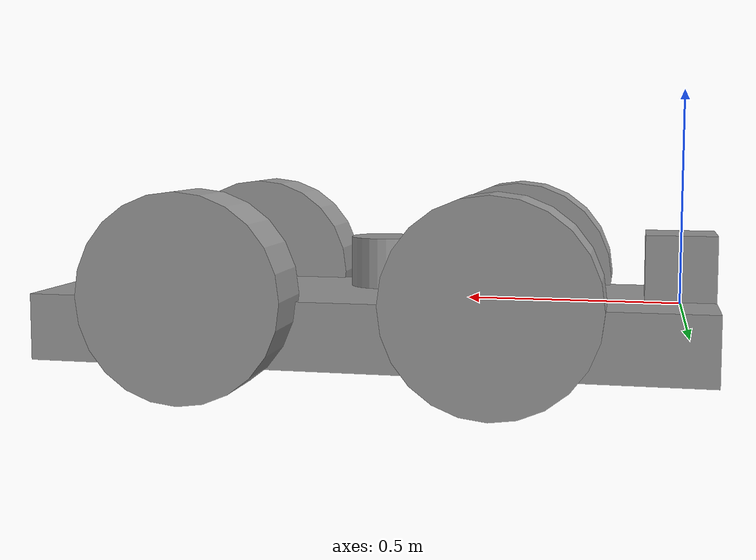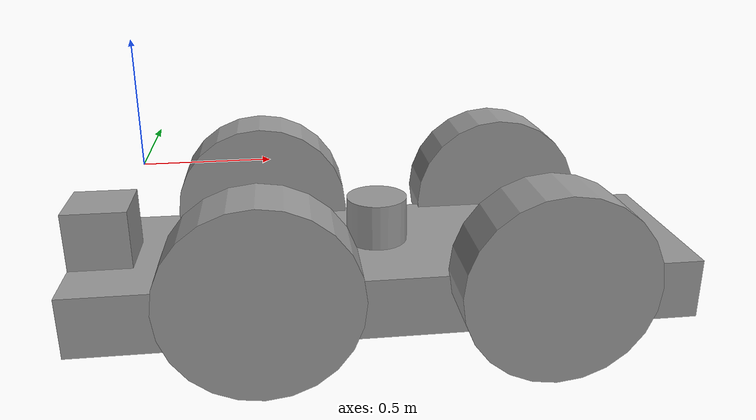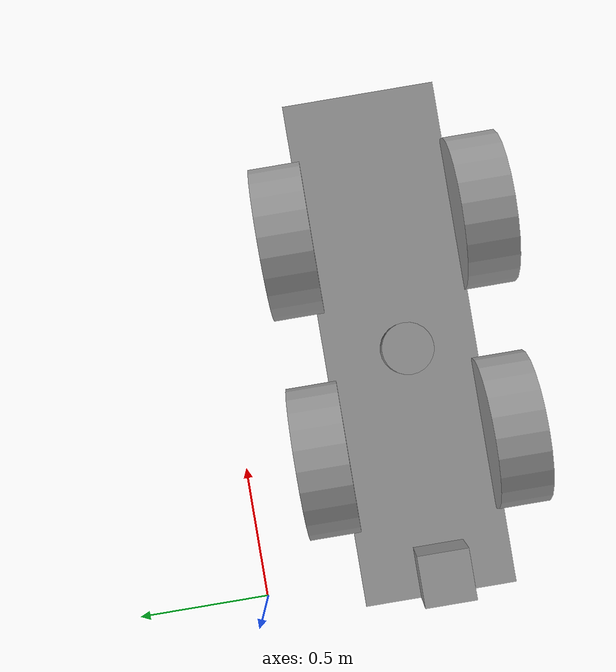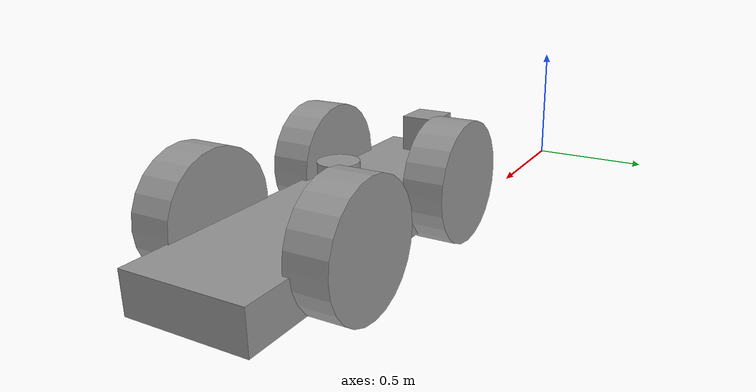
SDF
<?xml version='1.0'?>
<sdf version='1.7'>
  <model name='myRobot'>
    <link name='link_0'>
      <inertial>
        <mass>1</mass>
        <inertia>
          <ixx>0.145833</ixx>
          <ixy>0</ixy>
          <ixz>0</ixz>
          <iyy>0.145833</iyy>
          <iyz>0</iyz>
          <izz>0.125</izz>
        </inertia>
        <pose>0 0 0 0 -0 0</pose>
      </inertial>
      <pose>1.34607 -0.296749 -0.06 1.5705 -0 0</pose>
      <gravity>1</gravity>
      <self_collide>0</self_collide>
      <kinematic>0</kinematic>
      <enable_wind>0</enable_wind>
      <visual name='visual'>
        <pose>0 0 0 0 -0 0</pose>
        <geometry>
          <cylinder>
            <radius>0.3</radius>
            <length>0.2</length>
          </cylinder>
        </geometry>
        <material>
          <lighting>1</lighting>
          <script>
            <uri>file://media/materials/scripts/gazebo.material</uri>
            <name>Gazebo/Grey</name>
          </script>
          <shader type='pixel'>
            <normal_map>__default__</normal_map>
          </shader>
          <ambient>0.3 0.3 0.3 1</ambient>
          <diffuse>0.7 0.7 0.7 1</diffuse>
          <specular>0.01 0.01 0.01 1</specular>
          <emissive>0 0 0 1</emissive>
        </material>
        <transparency>0</transparency>
        <cast_shadows>1</cast_shadows>
      </visual>
      <collision name='collision'>
        <laser_retro>0</laser_retro>
        <max_contacts>10</max_contacts>
        <pose>0 0 0 0 -0 0</pose>
        <geometry>
          <cylinder>
            <radius>0.3</radius>
            <length>0.2</length>
          </cylinder>
        </geometry>
        <surface>
          <friction>
            <ode>
              <mu>1</mu>
              <mu2>1</mu2>
              <fdir1>0 0 0</fdir1>
              <slip1>0</slip1>
              <slip2>0</slip2>
            </ode>
            <torsional>
              <coefficient>1</coefficient>
              <patch_radius>0</patch_radius>
              <surface_radius>0</surface_radius>
              <use_patch_radius>1</use_patch_radius>
              <ode>
                <slip>0</slip>
              </ode>
            </torsional>
          </friction>
          <bounce>
            <restitution_coefficient>0</restitution_coefficient>
            <threshold>1e+06</threshold>
          </bounce>
          <contact>
            <collide_without_contact>0</collide_without_contact>
            <collide_without_contact_bitmask>1</collide_without_contact_bitmask>
            <collide_bitmask>1</collide_bitmask>
            <ode>
              <soft_cfm>0</soft_cfm>
              <soft_erp>0.2</soft_erp>
              <kp>1e+13</kp>
              <kd>1</kd>
              <max_vel>0.01</max_vel>
              <min_depth>0</min_depth>
            </ode>
            <bullet>
              <split_impulse>1</split_impulse>
              <split_impulse_penetration_threshold>-0.01</split_impulse_penetration_threshold>
              <soft_cfm>0</soft_cfm>
              <soft_erp>0.2</soft_erp>
              <kp>1e+13</kp>
              <kd>1</kd>
            </bullet>
          </contact>
        </surface>
      </collision>
    </link>
    <link name='link_0_clone'>
      <inertial>
        <mass>1</mass>
        <inertia>
          <ixx>0.145833</ixx>
          <ixy>0</ixy>
          <ixz>0</ixz>
          <iyy>0.145833</iyy>
          <iyz>0</iyz>
          <izz>0.125</izz>
        </inertia>
        <pose>0 0 0 0 -0 0</pose>
      </inertial>
      <pose>0.476071 -1.03675 -0.06 1.5705 -0 0</pose>
      <gravity>1</gravity>
      <self_collide>0</self_collide>
      <kinematic>0</kinematic>
      <enable_wind>0</enable_wind>
      <visual name='visual'>
        <pose>0 0 0 0 -0 0</pose>
        <geometry>
          <cylinder>
            <radius>0.3</radius>
            <length>0.2</length>
          </cylinder>
        </geometry>
        <material>
          <lighting>1</lighting>
          <script>
            <uri>file://media/materials/scripts/gazebo.material</uri>
            <name>Gazebo/Grey</name>
          </script>
          <shader type='pixel'>
            <normal_map>__default__</normal_map>
          </shader>
          <ambient>0.3 0.3 0.3 1</ambient>
          <diffuse>0.7 0.7 0.7 1</diffuse>
          <specular>0.01 0.01 0.01 1</specular>
          <emissive>0 0 0 1</emissive>
        </material>
        <transparency>0</transparency>
        <cast_shadows>1</cast_shadows>
      </visual>
      <collision name='collision'>
        <laser_retro>0</laser_retro>
        <max_contacts>10</max_contacts>
        <pose>0 0 0 0 -0 0</pose>
        <geometry>
          <cylinder>
            <radius>0.3</radius>
            <length>0.2</length>
          </cylinder>
        </geometry>
        <surface>
          <friction>
            <ode>
              <mu>1</mu>
              <mu2>1</mu2>
              <fdir1>0 0 0</fdir1>
              <slip1>0</slip1>
              <slip2>0</slip2>
            </ode>
            <torsional>
              <coefficient>1</coefficient>
              <patch_radius>0</patch_radius>
              <surface_radius>0</surface_radius>
              <use_patch_radius>1</use_patch_radius>
              <ode>
                <slip>0</slip>
              </ode>
            </torsional>
          </friction>
          <bounce>
            <restitution_coefficient>0</restitution_coefficient>
            <threshold>1e+06</threshold>
          </bounce>
          <contact>
            <collide_without_contact>0</collide_without_contact>
            <collide_without_contact_bitmask>1</collide_without_contact_bitmask>
            <collide_bitmask>1</collide_bitmask>
            <ode>
              <soft_cfm>0</soft_cfm>
              <soft_erp>0.2</soft_erp>
              <kp>1e+13</kp>
              <kd>1</kd>
              <max_vel>0.01</max_vel>
              <min_depth>0</min_depth>
            </ode>
            <bullet>
              <split_impulse>1</split_impulse>
              <split_impulse_penetration_threshold>-0.01</split_impulse_penetration_threshold>
              <soft_cfm>0</soft_cfm>
              <soft_erp>0.2</soft_erp>
              <kp>1e+13</kp>
              <kd>1</kd>
            </bullet>
          </contact>
        </surface>
      </collision>
    </link>
    <link name='link_0_clone_0'>
      <inertial>
        <mass>1</mass>
        <inertia>
          <ixx>0.145833</ixx>
          <ixy>0</ixy>
          <ixz>0</ixz>
          <iyy>0.145833</iyy>
          <iyz>0</iyz>
          <izz>0.125</izz>
        </inertia>
        <pose>0 0 0 0 -0 0</pose>
      </inertial>
      <pose>0.476071 -0.296749 -0.06 1.5705 -0 0</pose>
      <gravity>1</gravity>
      <self_collide>0</self_collide>
      <kinematic>0</kinematic>
      <enable_wind>0</enable_wind>
      <visual name='visual'>
        <pose>0 0 0 0 -0 0</pose>
        <geometry>
          <cylinder>
            <radius>0.3</radius>
            <length>0.2</length>
          </cylinder>
        </geometry>
        <material>
          <lighting>1</lighting>
          <script>
            <uri>file://media/materials/scripts/gazebo.material</uri>
            <name>Gazebo/Grey</name>
          </script>
          <shader type='pixel'>
            <normal_map>__default__</normal_map>
          </shader>
          <ambient>0.3 0.3 0.3 1</ambient>
          <diffuse>0.7 0.7 0.7 1</diffuse>
          <specular>0.01 0.01 0.01 1</specular>
          <emissive>0 0 0 1</emissive>
        </material>
        <transparency>0</transparency>
        <cast_shadows>1</cast_shadows>
      </visual>
      <collision name='collision'>
        <laser_retro>0</laser_retro>
        <max_contacts>10</max_contacts>
        <pose>0 0 0 0 -0 0</pose>
        <geometry>
          <cylinder>
            <radius>0.3</radius>
            <length>0.2</length>
          </cylinder>
        </geometry>
        <surface>
          <friction>
            <ode>
              <mu>1</mu>
              <mu2>1</mu2>
              <fdir1>0 0 0</fdir1>
              <slip1>0</slip1>
              <slip2>0</slip2>
            </ode>
            <torsional>
              <coefficient>1</coefficient>
              <patch_radius>0</patch_radius>
              <surface_radius>0</surface_radius>
              <use_patch_radius>1</use_patch_radius>
              <ode>
                <slip>0</slip>
              </ode>
            </torsional>
          </friction>
          <bounce>
            <restitution_coefficient>0</restitution_coefficient>
            <threshold>1e+06</threshold>
          </bounce>
          <contact>
            <collide_without_contact>0</collide_without_contact>
            <collide_without_contact_bitmask>1</collide_without_contact_bitmask>
            <collide_bitmask>1</collide_bitmask>
            <ode>
              <soft_cfm>0</soft_cfm>
              <soft_erp>0.2</soft_erp>
              <kp>1e+13</kp>
              <kd>1</kd>
              <max_vel>0.01</max_vel>
              <min_depth>0</min_depth>
            </ode>
            <bullet>
              <split_impulse>1</split_impulse>
              <split_impulse_penetration_threshold>-0.01</split_impulse_penetration_threshold>
              <soft_cfm>0</soft_cfm>
              <soft_erp>0.2</soft_erp>
              <kp>1e+13</kp>
              <kd>1</kd>
            </bullet>
          </contact>
        </surface>
      </collision>
    </link>
    <link name='link_0_clone_1'>
      <inertial>
        <mass>1</mass>
        <inertia>
          <ixx>0.145833</ixx>
          <ixy>0</ixy>
          <ixz>0</ixz>
          <iyy>0.145833</iyy>
          <iyz>0</iyz>
          <izz>0.125</izz>
        </inertia>
        <pose>0 0 0 0 -0 0</pose>
      </inertial>
      <pose>1.345 -1.05675 -0.06 1.5705 -0 0</pose>
      <gravity>1</gravity>
      <self_collide>0</self_collide>
      <kinematic>0</kinematic>
      <enable_wind>0</enable_wind>
      <visual name='visual'>
        <pose>0 0 0 0 -0 0</pose>
        <geometry>
          <cylinder>
            <radius>0.3</radius>
            <length>0.2</length>
          </cylinder>
        </geometry>
        <material>
          <lighting>1</lighting>
          <script>
            <uri>file://media/materials/scripts/gazebo.material</uri>
            <name>Gazebo/Grey</name>
          </script>
          <shader type='pixel'>
            <normal_map>__default__</normal_map>
          </shader>
          <ambient>0.3 0.3 0.3 1</ambient>
          <diffuse>0.7 0.7 0.7 1</diffuse>
          <specular>0.01 0.01 0.01 1</specular>
          <emissive>0 0 0 1</emissive>
        </material>
        <transparency>0</transparency>
        <cast_shadows>1</cast_shadows>
      </visual>
      <collision name='collision'>
        <laser_retro>0</laser_retro>
        <max_contacts>10</max_contacts>
        <pose>0 0 0 0 -0 0</pose>
        <geometry>
          <cylinder>
            <radius>0.3</radius>
            <length>0.2</length>
          </cylinder>
        </geometry>
        <surface>
          <friction>
            <ode>
              <mu>1</mu>
              <mu2>1</mu2>
              <fdir1>0 0 0</fdir1>
              <slip1>0</slip1>
              <slip2>0</slip2>
            </ode>
            <torsional>
              <coefficient>1</coefficient>
              <patch_radius>0</patch_radius>
              <surface_radius>0</surface_radius>
              <use_patch_radius>1</use_patch_radius>
              <ode>
                <slip>0</slip>
              </ode>
            </torsional>
          </friction>
          <bounce>
            <restitution_coefficient>0</restitution_coefficient>
            <threshold>1e+06</threshold>
          </bounce>
          <contact>
            <collide_without_contact>0</collide_without_contact>
            <collide_without_contact_bitmask>1</collide_without_contact_bitmask>
            <collide_bitmask>1</collide_bitmask>
            <ode>
              <soft_cfm>0</soft_cfm>
              <soft_erp>0.2</soft_erp>
              <kp>1e+13</kp>
              <kd>1</kd>
              <max_vel>0.01</max_vel>
              <min_depth>0</min_depth>
            </ode>
            <bullet>
              <split_impulse>1</split_impulse>
              <split_impulse_penetration_threshold>-0.01</split_impulse_penetration_threshold>
              <soft_cfm>0</soft_cfm>
              <soft_erp>0.2</soft_erp>
              <kp>1e+13</kp>
              <kd>1</kd>
            </bullet>
          </contact>
        </surface>
      </collision>
    </link>
    <link name='link_2'>
      <inertial>
        <mass>1</mass>
        <inertia>
          <ixx>0.166667</ixx>
          <ixy>0</ixy>
          <ixz>0</ixz>
          <iyy>0.166667</iyy>
          <iyz>0</iyz>
          <izz>0.166667</izz>
        </inertia>
        <pose>0 0 0 0 -0 0</pose>
      </inertial>
      <pose>0.876071 -0.666749 -0.18 0 -0 0</pose>
      <gravity>1</gravity>
      <self_collide>0</self_collide>
      <kinematic>0</kinematic>
      <enable_wind>0</enable_wind>
      <visual name='visual'>
        <pose>0 0 0 0 -0 0</pose>
        <geometry>
          <box>
            <size>2 0.6 0.2</size>
          </box>
        </geometry>
        <material>
          <lighting>1</lighting>
          <script>
            <uri>file://media/materials/scripts/gazebo.material</uri>
            <name>Gazebo/Grey</name>
          </script>
          <shader type='pixel'>
            <normal_map>__default__</normal_map>
          </shader>
          <ambient>0.3 0.3 0.3 1</ambient>
          <diffuse>0.7 0.7 0.7 1</diffuse>
          <specular>0.01 0.01 0.01 1</specular>
          <emissive>0 0 0 1</emissive>
        </material>
        <transparency>0</transparency>
        <cast_shadows>1</cast_shadows>
      </visual>
      <collision name='collision'>
        <laser_retro>0</laser_retro>
        <max_contacts>10</max_contacts>
        <pose>0 0 0 0 -0 0</pose>
        <geometry>
          <box>
            <size>2 0.6 0.2</size>
          </box>
        </geometry>
        <surface>
          <friction>
            <ode>
              <mu>1</mu>
              <mu2>1</mu2>
              <fdir1>0 0 0</fdir1>
              <slip1>0</slip1>
              <slip2>0</slip2>
            </ode>
            <torsional>
              <coefficient>1</coefficient>
              <patch_radius>0</patch_radius>
              <surface_radius>0</surface_radius>
              <use_patch_radius>1</use_patch_radius>
              <ode>
                <slip>0</slip>
              </ode>
            </torsional>
          </friction>
          <bounce>
            <restitution_coefficient>0</restitution_coefficient>
            <threshold>1e+06</threshold>
          </bounce>
          <contact>
            <collide_without_contact>0</collide_without_contact>
            <collide_without_contact_bitmask>1</collide_without_contact_bitmask>
            <collide_bitmask>1</collide_bitmask>
            <ode>
              <soft_cfm>0</soft_cfm>
              <soft_erp>0.2</soft_erp>
              <kp>1e+13</kp>
              <kd>1</kd>
              <max_vel>0.01</max_vel>
              <min_depth>0</min_depth>
            </ode>
            <bullet>
              <split_impulse>1</split_impulse>
              <split_impulse_penetration_threshold>-0.01</split_impulse_penetration_threshold>
              <soft_cfm>0</soft_cfm>
              <soft_erp>0.2</soft_erp>
              <kp>1e+13</kp>
              <kd>1</kd>
            </bullet>
          </contact>
        </surface>
      </collision>
    </link>
    <link name='link_3'>
      <inertial>
        <mass>1</mass>
        <inertia>
          <ixx>0.166667</ixx>
          <ixy>0</ixy>
          <ixz>0</ixz>
          <iyy>0.166667</iyy>
          <iyz>0</iyz>
          <izz>0.166667</izz>
        </inertia>
        <pose>0 0 0 0 -0 0</pose>
      </inertial>
      <pose>-0.023929 -0.686749 0.01 0 -0 0</pose>
      <gravity>1</gravity>
      <self_collide>0</self_collide>
      <kinematic>0</kinematic>
      <enable_wind>0</enable_wind>
      <visual name='visual'>
        <pose>0 0 0 0 -0 0</pose>
        <geometry>
          <box>
            <size>0.2 0.2 0.2</size>
          </box>
        </geometry>
        <material>
          <lighting>1</lighting>
          <script>
            <uri>file://media/materials/scripts/gazebo.material</uri>
            <name>Gazebo/Grey</name>
          </script>
          <shader type='pixel'>
            <normal_map>__default__</normal_map>
          </shader>
          <ambient>0.3 0.3 0.3 1</ambient>
          <diffuse>0.7 0.7 0.7 1</diffuse>
          <specular>0.01 0.01 0.01 1</specular>
          <emissive>0 0 0 1</emissive>
        </material>
        <transparency>0</transparency>
        <cast_shadows>1</cast_shadows>
      </visual>
      <collision name='collision'>
        <laser_retro>0</laser_retro>
        <max_contacts>10</max_contacts>
        <pose>0 0 0 0 -0 0</pose>
        <geometry>
          <box>
            <size>0.2 0.2 0.2</size>
          </box>
        </geometry>
        <surface>
          <friction>
            <ode>
              <mu>1</mu>
              <mu2>1</mu2>
              <fdir1>0 0 0</fdir1>
              <slip1>0</slip1>
              <slip2>0</slip2>
            </ode>
            <torsional>
              <coefficient>1</coefficient>
              <patch_radius>0</patch_radius>
              <surface_radius>0</surface_radius>
              <use_patch_radius>1</use_patch_radius>
              <ode>
                <slip>0</slip>
              </ode>
            </torsional>
          </friction>
          <bounce>
            <restitution_coefficient>0</restitution_coefficient>
            <threshold>1e+06</threshold>
          </bounce>
          <contact>
            <collide_without_contact>0</collide_without_contact>
            <collide_without_contact_bitmask>1</collide_without_contact_bitmask>
            <collide_bitmask>1</collide_bitmask>
            <ode>
              <soft_cfm>0</soft_cfm>
              <soft_erp>0.2</soft_erp>
              <kp>1e+13</kp>
              <kd>1</kd>
              <max_vel>0.01</max_vel>
              <min_depth>0</min_depth>
            </ode>
            <bullet>
              <split_impulse>1</split_impulse>
              <split_impulse_penetration_threshold>-0.01</split_impulse_penetration_threshold>
              <soft_cfm>0</soft_cfm>
              <soft_erp>0.2</soft_erp>
              <kp>1e+13</kp>
              <kd>1</kd>
            </bullet>
          </contact>
        </surface>
      </collision>
    </link>
    <link name='link_4'>
      <inertial>
        <mass>1</mass>
        <inertia>
          <ixx>0.145833</ixx>
          <ixy>0</ixy>
          <ixz>0</ixz>
          <iyy>0.145833</iyy>
          <iyz>0</iyz>
          <izz>0.125</izz>
        </inertia>
        <pose>0 0 0 0 -0 0</pose>
      </inertial>
      <pose>0.856071 -0.686749 0.01 0 -0 0</pose>
      <gravity>1</gravity>
      <self_collide>0</self_collide>
      <kinematic>0</kinematic>
      <enable_wind>0</enable_wind>
      <visual name='visual'>
        <pose>0 0 0 0 -0 0</pose>
        <geometry>
          <cylinder>
            <radius>0.1</radius>
            <length>0.15</length>
          </cylinder>
        </geometry>
        <material>
          <lighting>1</lighting>
          <script>
            <uri>file://media/materials/scripts/gazebo.material</uri>
            <name>Gazebo/Grey</name>
          </script>
          <shader type='pixel'>
            <normal_map>__default__</normal_map>
          </shader>
          <ambient>0.3 0.3 0.3 1</ambient>
          <diffuse>0.7 0.7 0.7 1</diffuse>
          <specular>0.01 0.01 0.01 1</specular>
          <emissive>0 0 0 1</emissive>
        </material>
        <transparency>0</transparency>
        <cast_shadows>1</cast_shadows>
      </visual>
      <collision name='collision'>
        <laser_retro>0</laser_retro>
        <max_contacts>10</max_contacts>
        <pose>0 0 0 0 -0 0</pose>
        <geometry>
          <cylinder>
            <radius>0.1</radius>
            <length>0.15</length>
          </cylinder>
        </geometry>
        <surface>
          <friction>
            <ode>
              <mu>1</mu>
              <mu2>1</mu2>
              <fdir1>0 0 0</fdir1>
              <slip1>0</slip1>
              <slip2>0</slip2>
            </ode>
            <torsional>
              <coefficient>1</coefficient>
              <patch_radius>0</patch_radius>
              <surface_radius>0</surface_radius>
              <use_patch_radius>1</use_patch_radius>
              <ode>
                <slip>0</slip>
              </ode>
            </torsional>
          </friction>
          <bounce>
            <restitution_coefficient>0</restitution_coefficient>
            <threshold>1e+06</threshold>
          </bounce>
          <contact>
            <collide_without_contact>0</collide_without_contact>
            <collide_without_contact_bitmask>1</collide_without_contact_bitmask>
            <collide_bitmask>1</collide_bitmask>
            <ode>
              <soft_cfm>0</soft_cfm>
              <soft_erp>0.2</soft_erp>
              <kp>1e+13</kp>
              <kd>1</kd>
              <max_vel>0.01</max_vel>
              <min_depth>0</min_depth>
            </ode>
            <bullet>
              <split_impulse>1</split_impulse>
              <split_impulse_penetration_threshold>-0.01</split_impulse_penetration_threshold>
              <soft_cfm>0</soft_cfm>
              <soft_erp>0.2</soft_erp>
              <kp>1e+13</kp>
              <kd>1</kd>
            </bullet>
          </contact>
        </surface>
      </collision>
    </link>
    <joint name='link_2_JOINT_0' type='revolute'>
      <parent>link_2</parent>
      <child>link_0_clone_1</child>
      <pose>0 0 0 0 -0 0</pose>
      <axis>
        <xyz>0 0 1</xyz>
        <limit>
          <lower>-1.79769e+308</lower>
          <upper>1.79769e+308</upper>
          <effort>-1</effort>
          <velocity>-1</velocity>
        </limit>
        <dynamics>
          <spring_reference>0</spring_reference>
          <spring_stiffness>0</spring_stiffness>
          <damping>0</damping>
        </dynamics>
      </axis>
      <physics>
        <ode>
          <limit>
            <cfm>0</cfm>
            <erp>0.2</erp>
          </limit>
          <suspension>
            <cfm>0</cfm>
            <erp>0.2</erp>
          </suspension>
        </ode>
      </physics>
    </joint>
    <joint name='link_2_JOINT_1' type='revolute'>
      <parent>link_2</parent>
      <child>link_0_clone</child>
      <pose>0 0 0 0 -0 0</pose>
      <axis>
        <xyz>0 0 1</xyz>
        <limit>
          <lower>-1.79769e+308</lower>
          <upper>1.79769e+308</upper>
          <effort>-1</effort>
          <velocity>-1</velocity>
        </limit>
        <dynamics>
          <spring_reference>0</spring_reference>
          <spring_stiffness>0</spring_stiffness>
          <damping>0</damping>
        </dynamics>
      </axis>
      <physics>
        <ode>
          <limit>
            <cfm>0</cfm>
            <erp>0.2</erp>
          </limit>
          <suspension>
            <cfm>0</cfm>
            <erp>0.2</erp>
          </suspension>
        </ode>
      </physics>
    </joint>
    <joint name='link_2_JOINT_2' type='revolute'>
      <parent>link_2</parent>
      <child>link_0</child>
      <pose>0 0 0 0 -0 0</pose>
      <axis>
        <xyz>0 0 1</xyz>
        <limit>
          <lower>-1.79769e+308</lower>
          <upper>1.79769e+308</upper>
          <effort>-1</effort>
          <velocity>-1</velocity>
        </limit>
        <dynamics>
          <spring_reference>0</spring_reference>
          <spring_stiffness>0</spring_stiffness>
          <damping>0</damping>
        </dynamics>
      </axis>
      <physics>
        <ode>
          <limit>
            <cfm>0</cfm>
            <erp>0.2</erp>
          </limit>
          <suspension>
            <cfm>0</cfm>
            <erp>0.2</erp>
          </suspension>
        </ode>
      </physics>
    </joint>
    <joint name='link_2_JOINT_4' type='revolute'>
      <parent>link_2</parent>
      <child>link_0_clone_0</child>
      <pose>0 0 0 0 -0 0</pose>
      <axis>
        <xyz>0 0 1</xyz>
        <limit>
          <lower>-1.79769e+308</lower>
          <upper>1.79769e+308</upper>
          <effort>-1</effort>
          <velocity>-1</velocity>
        </limit>
        <dynamics>
          <spring_reference>0</spring_reference>
          <spring_stiffness>0</spring_stiffness>
          <damping>0</damping>
        </dynamics>
      </axis>
      <physics>
        <ode>
          <limit>
            <cfm>0</cfm>
            <erp>0.2</erp>
          </limit>
          <suspension>
            <cfm>0</cfm>
            <erp>0.2</erp>
          </suspension>
        </ode>
      </physics>
    </joint>
    <joint name='link_2_JOINT_5' type='fixed'>
      <parent>link_2</parent>
      <child>link_3</child>
      <pose>0 0 0 0 -0 0</pose>
      <physics>
        <ode>
          <limit>
            <cfm>0</cfm>
            <erp>0.2</erp>
          </limit>
          <suspension>
            <cfm>0</cfm>
            <erp>0.2</erp>
          </suspension>
        </ode>
      </physics>
    </joint>
    <joint name='link_2_JOINT_6' type='revolute'>
      <parent>link_2</parent>
      <child>link_4</child>
      <pose>0 0 0 0 -0 0</pose>
      <axis>
        <xyz>1 0 0</xyz>
        <limit>
          <lower>-1.79769e+308</lower>
          <upper>1.79769e+308</upper>
          <effort>-1</effort>
          <velocity>-1</velocity>
        </limit>
        <dynamics>
          <spring_reference>0</spring_reference>
          <spring_stiffness>0</spring_stiffness>
          <damping>0</damping>
        </dynamics>
      </axis>
      <physics>
        <ode>
          <limit>
            <cfm>0</cfm>
            <erp>0.2</erp>
          </limit>
          <suspension>
            <cfm>0</cfm>
            <erp>0.2</erp>
          </suspension>
        </ode>
      </physics>
    </joint>
    <static>0</static>
    <allow_auto_disable>1</allow_auto_disable>
  </model>
</sdf>
